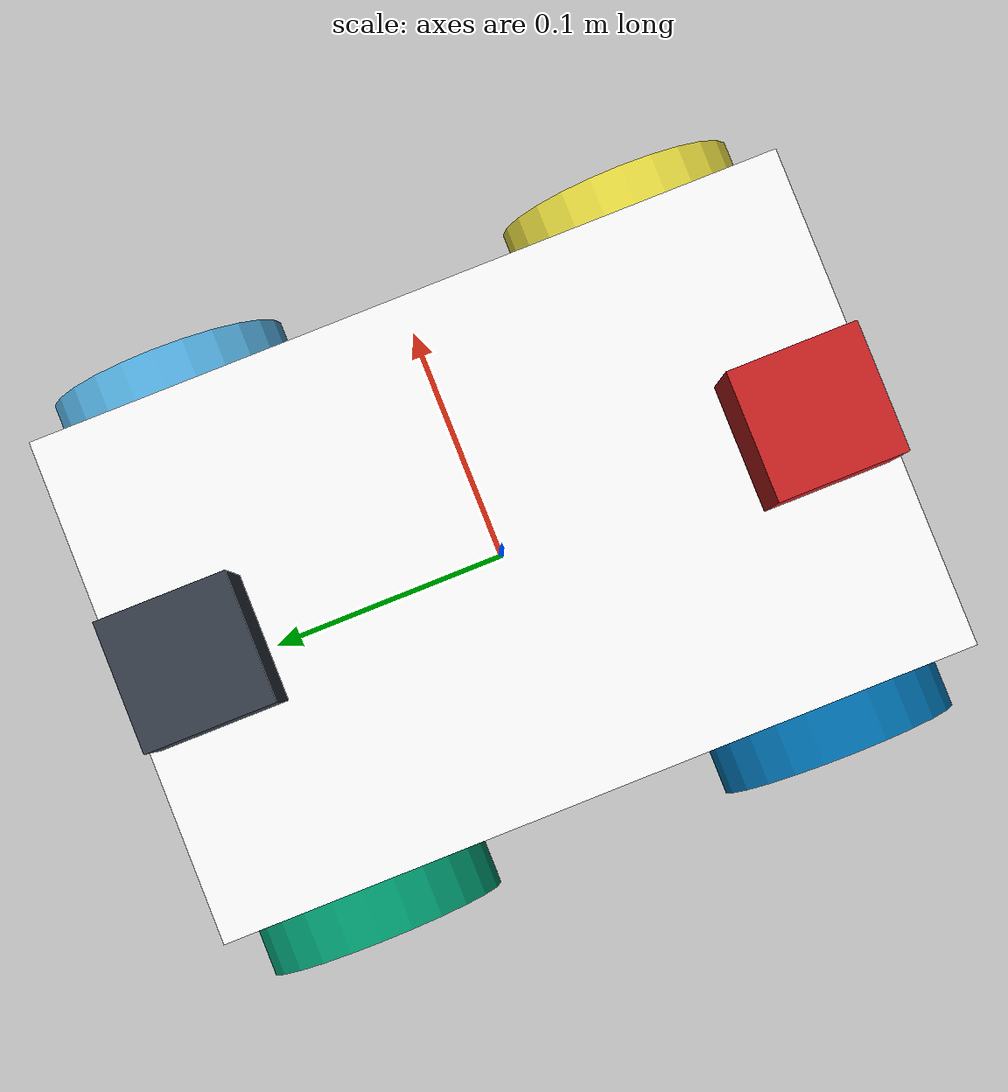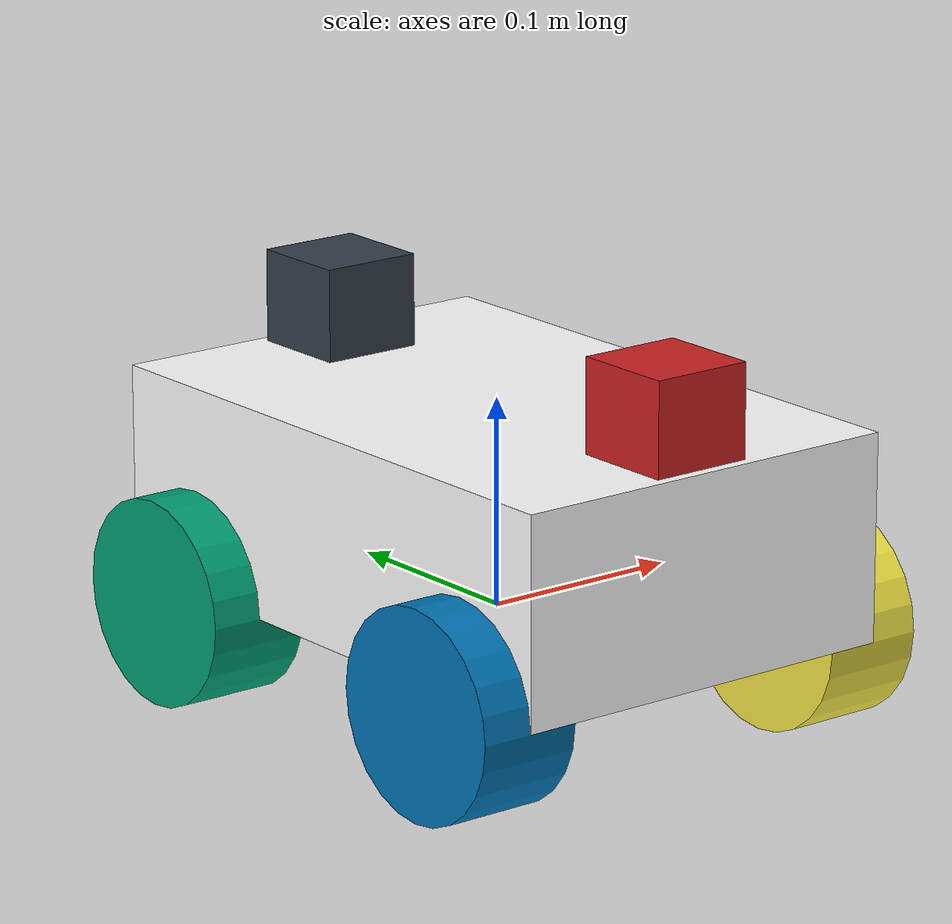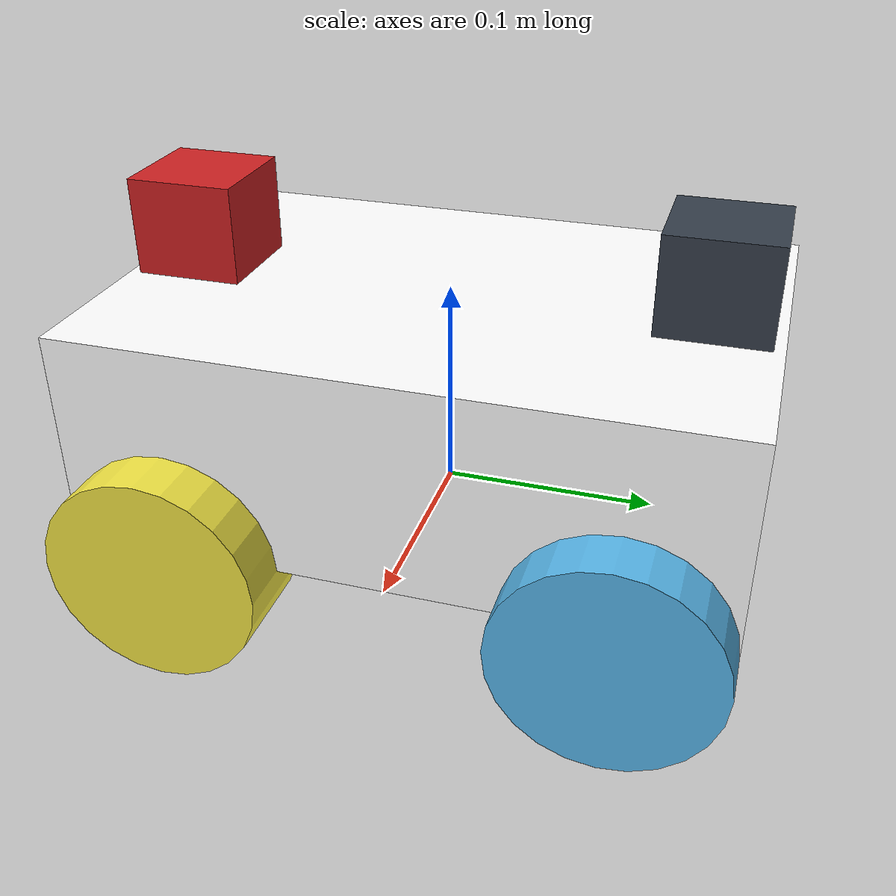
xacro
<?xml version="1.0"?>
<robot name="robot_nonhol" xmlns:xacro="http://www.ros.org/wiki/xacro" >

	<!-- Included files -->
	<xacro:include filename="$(find node_counting_alg)/urdf/robot_nonhol.gazebo"/>
	<xacro:include filename="$(find node_counting_alg)/urdf/materials.xacro" />

	<!-- Fixed parameters -->
	<xacro:property name="mass_wheel" value="0.05" />
	<xacro:property name="width_wheel" value="0.05" />
	<xacro:property name="radius_wheel" value="0.05" />

	<!-- Macros for inertia -->
	<xacro:macro name="cylinder_inertia" params="mass r h">
		<inertia
			ixx="${mass}*(3*${r}*${r}+${h}*${h})/12}"
			ixy = "0"
			ixz = "0"
			iyy="${mass}*(3*${r}*${r}+${h}*${h})/12}"
			iyz = "0"
			izz="${mass}*(${r}*${r})/2}"/>
	</xacro:macro>

	<!-- Macros for inertial -->
	<xacro:macro name="default_inertial" params="mass">
				<inertial>
						<mass value="${mass}" />
						<inertia ixx="1.0" ixy="0.0" ixz="0.0"
								iyy="1.0" iyz="0.0"
								izz="1.0" />
				</inertial>
	</xacro:macro>

	<!-- Macros for geometry -->
	<xacro:macro name="cylinder_geometry" params="r h">
		<geometry>
				<cylinder length="${h}" radius="${r}"/>
		</geometry>
	</xacro:macro>

	<!-- Macros for wheels (links and joints) length="0.04" radius="0.1" -->
	<xacro:macro name="wheel_link" params="name">
		<link name="${name}">
			<inertial>
				<mass value="${mass_wheel}" />
				<origin rpy="1.5707 0 1.5707" xyz="0 0 0"/>
				<xacro:cylinder_inertia mass = "${mass_wheel}" r="${radius_wheel}" h="${width_wheel}" />
			</inertial>
			<collision name="link_right_wheel_collision">
				<origin rpy="1.5707 0 1.5707" xyz="0 0 0"/>
				<xacro:cylinder_geometry r = "${radius_wheel}" h = "${width_wheel}" />
			</collision>
			<visual name="${name}_visual">
				<origin rpy="1.5707 0 1.5707" xyz="0 0 0"/>
				<xacro:cylinder_geometry r = "${radius_wheel}" h = "${width_wheel}" />
			</visual>
		</link>
	</xacro:macro>
	<xacro:macro name="wheel_joint" params="name child origin_xyz">
		<joint name="${name}" type="continuous">
			<origin rpy="0 0 0" xyz="${origin_xyz}"/>
			<child link="${child}"/>
			<parent link="base_link"/>
			<axis rpy="0 0 0" xyz="0 1 0"/>
			<limit effort="10000" velocity="1000"/>
			<joint_properties damping="1.0" friction="1.0"/>
		</joint>
	</xacro:macro>

	<!-- Macros for sensor (links and joints) -->
	<xacro:macro name="sensor_link" params="name color">
		<link name="${name}">
			<inertial>
				<mass value="1e-5" />
				<origin xyz="0 0 0" rpy="0 0 0"/>
				<inertia ixx="1e-6" ixy="0" ixz="0" iyy="1e-6" iyz="0" izz="1e-6" />
			</inertial>
			<visual>
				<origin xyz="0 0 0" rpy="0 0 0"/>
				<geometry>
					<box size="0.05 0.05 0.05"/>
				</geometry>
				<material name="${color}" />
			</visual>
		</link>
	</xacro:macro>
	<xacro:macro name="sensor_joint" params="name child origin_xyz">
		<joint name="${name}" type="fixed">
			<origin xyz="${origin_xyz}" rpy="0 0 0"/>
			<child link="${child}"/>
			<parent link="base_link"/>
		</joint>
	</xacro:macro>

	<!-- Create robot's base_link -->
	<link name="base_link">
		<visual>
			<geometry>
				<box size="0.2 .3 .1"/>
			</geometry>
			<origin rpy="0 0 0" xyz="0 0 0.05"/>
			<material name="white">
				<color rgba="1 1 1 1"/>
			</material>
		</visual>
		<collision>
			<geometry>
				<box size="0.2 .3 0.1"/>
			</geometry>
		</collision>
		<xacro:default_inertial mass="10"/>
	</link>

	<!-- Create wheels -->
  	<xacro:wheel_link name="link_wheel1" />
	<xacro:wheel_joint name="joint_wheel1"  child="link_wheel1"  origin_xyz="0.1 0.1 0"  />

	<xacro:wheel_link name="link_wheel2" />
	<xacro:wheel_joint name="joint_wheel2"  child="link_wheel2"  origin_xyz="-0.1 0.1 0"  />

	<xacro:wheel_link name="link_wheel3" />
	<xacro:wheel_joint name="joint_wheel3"  child="link_wheel3"  origin_xyz="0.1 -0.1 0"  />

	<xacro:wheel_link name="link_wheel4" />
	<xacro:wheel_joint name="joint_wheel4"  child="link_wheel4"  origin_xyz="-0.1 -0.1 0"  />

	<!-- Create camera -->
	<xacro:sensor_link name="camera_link" color = "red"/>
	<xacro:sensor_joint name="camera_joint" child="camera_link"  origin_xyz="0 -0.12 0.12"  />

	<!-- Create laser -->
	<xacro:sensor_link name="laser_link" color = "blue"/>
	<xacro:sensor_joint name="laser_joint" child="laser_link"  origin_xyz="0 0.12 0.12"  />

	<gazebo>
		<plugin name="skid_steer_drive_controller" filename="libgazebo_ros_skid_steer_drive.so">
		<updateRate>100.0</updateRate>
		<leftFrontJoint>joint_heel1</leftFrontJoint>
		<rightFrontJoint>joint_wheel3</rightFrontJoint>
		<leftRearJoint>joint_wheel2</leftRearJoint>
		<rightRearJoint>joint_wheel4</rightRearJoint>
		<wheelDiameter>${radius_wheel}*2</wheelDiameter>
		<robotBaseFrame>base_link</robotBaseFrame>
		<torque>2</torque>
		<topicName>cmd_vel</topicName>
		<broadcastTF>0</broadcastTF>
		</plugin>
	</gazebo>

</robot>

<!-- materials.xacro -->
<robot>

  <material name="black">
    <color rgba="0.0 0.0 0.0 1.0"/>
  </material>
  <material name="blue">
    <color rgba="0.203125 0.23828125 0.28515625 1.0"/>
  </material>
  <material name="green">
    <color rgba="0.0 0.8 0.0 1.0"/>
  </material>
  <material name="grey">
    <color rgba="0.2 0.2 0.2 1.0"/>
  </material>
  <material name="orange">
    <color rgba="1.0 0.423529411765 0.0392156862745 1.0"/>
  </material>
  <material name="brown">
    <color rgba="0.870588235294 0.811764705882 0.764705882353 1.0"/>
  </material>
  <material name="red">
    <color rgba="0.80078125 0.12890625 0.1328125 1.0"/>
  </material>
  <material name="white">
    <color rgba="1.0 1.0 1.0 1.0"/>
  </material>

</robot>
